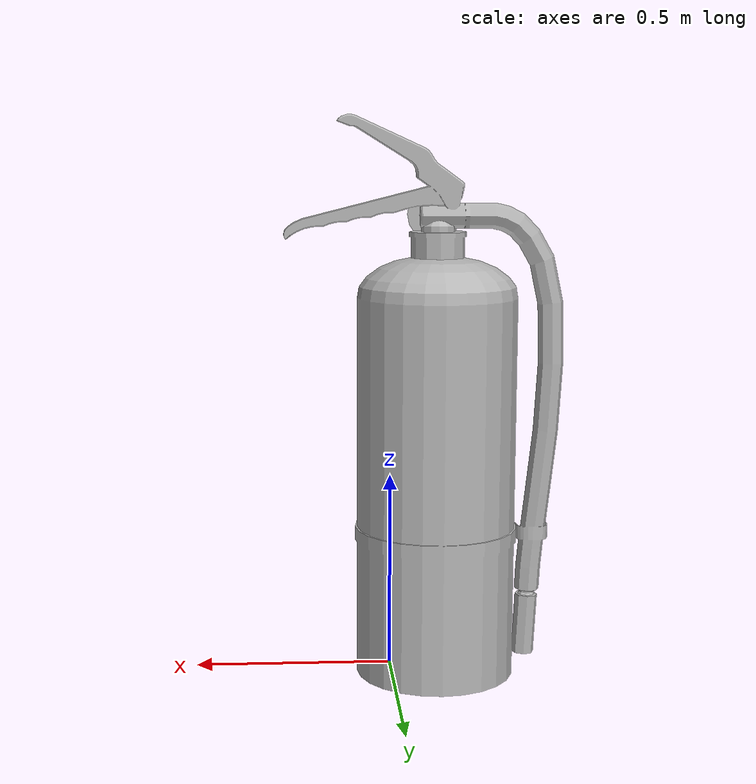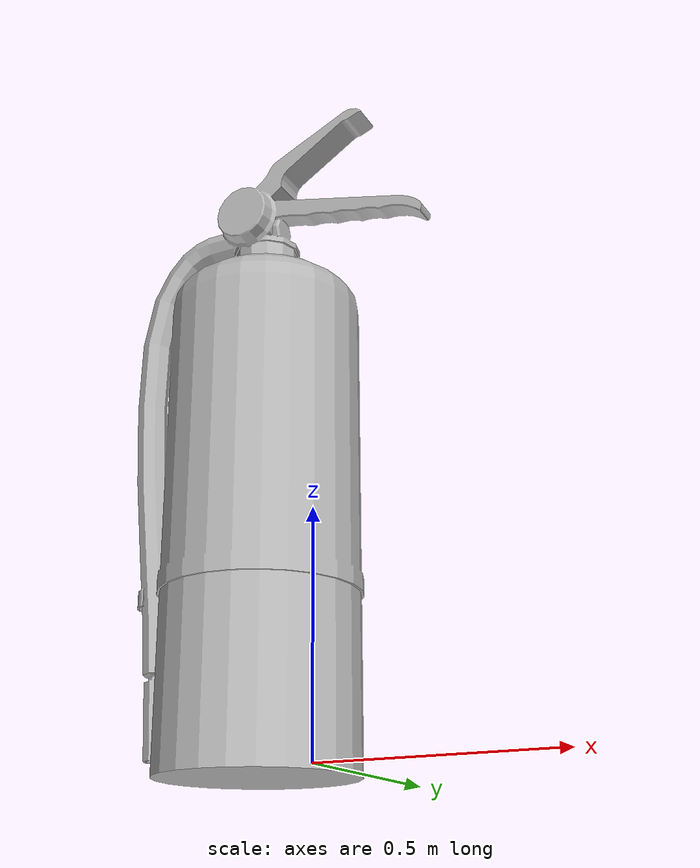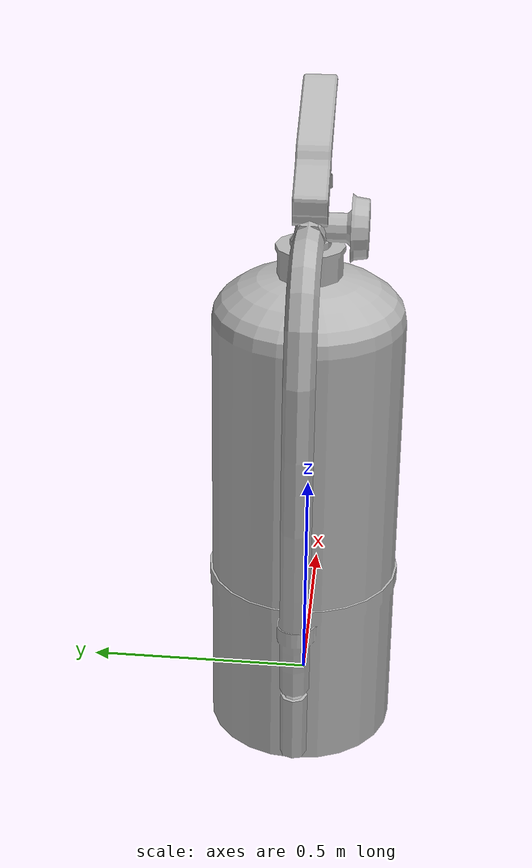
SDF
<?xml version='1.0' ?>
<sdf version="1.6">
    <model name="fire_extinguisher">
        <static>true</static>
        <link name="link">
            <collision name="collision">
                <geometry>
                    <mesh>
                        <uri>meshes/extinguisher.dae</uri>
                        <scale>3.3333 3.3333 3.3333</scale>
                    </mesh>
                </geometry>
            </collision>
            <visual name="visual">
                <geometry>
                    <mesh>
                        <uri>meshes/extinguisher.dae</uri>
                        <scale>3.3333 3.3333 3.3333</scale>
                    </mesh>
                </geometry>
            </visual>
        </link>
    </model>
</sdf>
